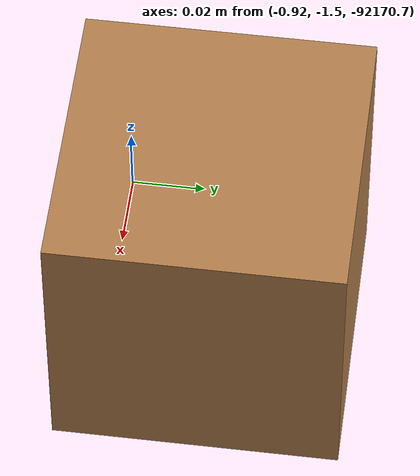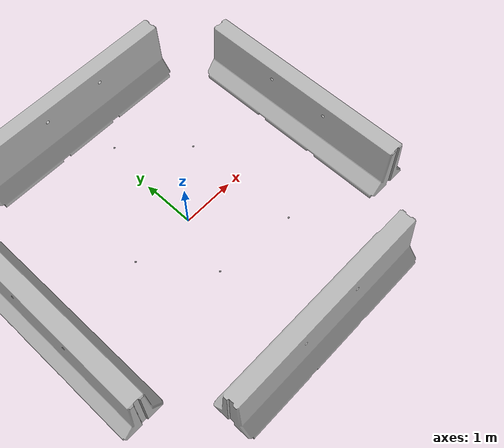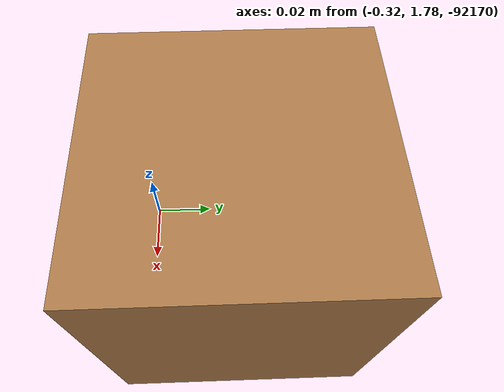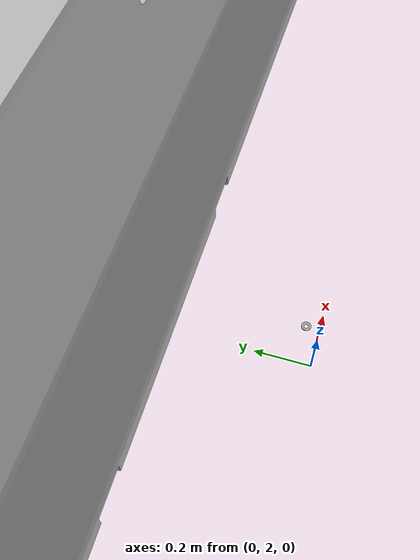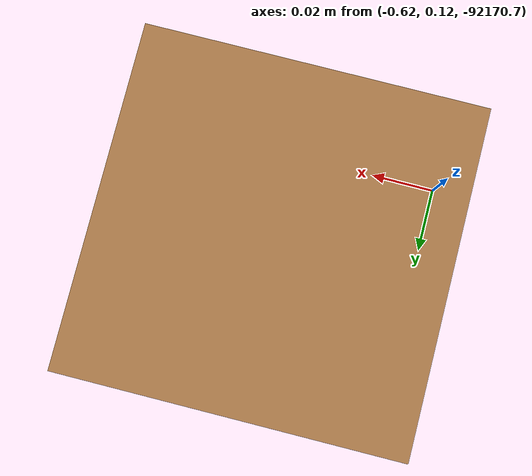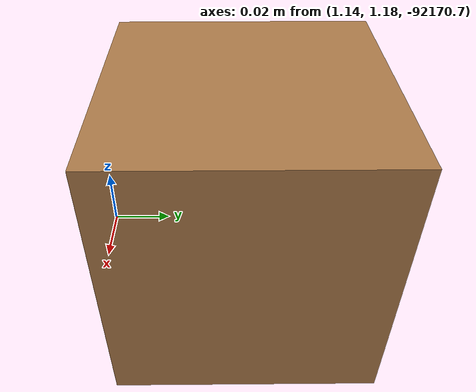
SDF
<sdf version="1.7">
 <world name="default">
  <light name="sun" type="directional">
   <pose>0 0 10 0 -0 0</pose>
   <diffuse>0.8 0.8 0.8 1</diffuse>
   <specular>0.2 0.2 0.2 1</specular>
   <attenuation>
    <range>1000</range>
    <constant>0.9</constant>
    <linear>0.01</linear>
    <quadratic>0.001</quadratic>
   </attenuation>
   <direction>-0.5 0.1 -0.9</direction>
   <spot><inner_angle>0</inner_angle><outer_angle>0</outer_angle><falloff>0</falloff></spot>
  </light>
  <model name="ground_plane">
   <static>1</static>
   <link name="link">
    <collision name="collision">
     <geometry><plane><normal>0 0 1</normal><size>100 100</size></plane></geometry>
     <surface>
      <contact><collide_bitmask>65535</collide_bitmask></contact>
      <friction><ode><mu>100</mu><mu2>50</mu2></ode></friction>
     </surface>
    </collision>
    <visual name="visual">
     <cast_shadows>0</cast_shadows>
     <geometry><plane><normal>0 0 1</normal><size>100 100</size></plane></geometry>
     <material>
      <script><uri>file://media/materials/scripts/gazebo.material</uri><name>Gazebo/Grey</name></script>
     </material>
    </visual>
   </link>
  </model>
  <gravity>0 0 -9.8</gravity>
  <magnetic_field>6e-06 2.3e-05 -4.2e-05</magnetic_field>
  <atmosphere type="adiabatic"/>
  <physics type="ode">
   <max_step_size>0.001</max_step_size>
   <real_time_factor>1</real_time_factor>
   <real_time_update_rate>1000</real_time_update_rate>
  </physics>
  <scene><ambient>0.4 0.4 0.4 1</ambient><background>0.7 0.7 0.7 1</background><shadows>1</shadows></scene>
  <spherical_coordinates>
   <surface_model>EARTH_WGS84</surface_model>
   <latitude_deg>0</latitude_deg>
   <longitude_deg>0</longitude_deg>
   <elevation>0</elevation>
   <heading_deg>0</heading_deg>
  </spherical_coordinates>
  <model name="jersey_barrier">
   <static>1</static>
   <link name="link">
    <visual name="visual">
     <geometry><mesh><uri>model://jersey_barrier/meshes/jersey_barrier.dae</uri></mesh></geometry>
    </visual>
    <collision name="upright">
     <pose>0 0 0.5715 0 -0 0</pose>
     <geometry><box><size>4.06542 0.3063 1.143</size></box></geometry>
    </collision>
    <collision name="base">
     <pose>0 0 0.032258 0 -0 0</pose>
     <geometry><box><size>4.06542 0.8107 0.064516</size></box></geometry>
    </collision>
    <collision name="base2">
     <pose>0 0 0.1 0 -0 0</pose>
     <geometry><box><size>4.06542 0.65 0.1</size></box></geometry>
    </collision>
    <collision name="base3">
     <pose>0 0 0.2 0 -0 0</pose>
     <geometry><box><size>4.06542 0.5 0.1</size></box></geometry>
    </collision>
    <collision name="left-angle">
     <pose>0 -0.224 0.2401 0.9 -0 0</pose>
     <geometry><box><size>4.06542 0.5 0.064516</size></box></geometry>
    </collision>
    <collision name="right-angle">
     <pose>0 0.224 0.2401 -0.9 0 0</pose>
     <geometry><box><size>4.06542 0.5 0.064516</size></box></geometry>
    </collision>
   </link>
   <pose>0.029912 -2.93762 0 0 -0 0</pose>
  </model>
  <model name="jersey_barrier_0">
   <static>1</static>
   <link name="link">
    <visual name="visual">
     <geometry><mesh><uri>model://jersey_barrier/meshes/jersey_barrier.dae</uri></mesh></geometry>
    </visual>
    <collision name="upright">
     <pose>0 0 0.5715 0 -0 0</pose>
     <geometry><box><size>4.06542 0.3063 1.143</size></box></geometry>
    </collision>
    <collision name="base">
     <pose>0 0 0.032258 0 -0 0</pose>
     <geometry><box><size>4.06542 0.8107 0.064516</size></box></geometry>
    </collision>
    <collision name="base2">
     <pose>0 0 0.1 0 -0 0</pose>
     <geometry><box><size>4.06542 0.65 0.1</size></box></geometry>
    </collision>
    <collision name="base3">
     <pose>0 0 0.2 0 -0 0</pose>
     <geometry><box><size>4.06542 0.5 0.1</size></box></geometry>
    </collision>
    <collision name="left-angle">
     <pose>0 -0.224 0.2401 0.9 -0 0</pose>
     <geometry><box><size>4.06542 0.5 0.064516</size></box></geometry>
    </collision>
    <collision name="right-angle">
     <pose>0 0.224 0.2401 -0.9 0 0</pose>
     <geometry><box><size>4.06542 0.5 0.064516</size></box></geometry>
    </collision>
   </link>
   <pose>-0.003474 2.89562 0 0 -0 0</pose>
  </model>
  <model name="jersey_barrier_1">
   <static>1</static>
   <link name="link">
    <visual name="visual">
     <geometry><mesh><uri>model://jersey_barrier/meshes/jersey_barrier.dae</uri></mesh></geometry>
    </visual>
    <collision name="upright">
     <pose>0 0 0.5715 0 -0 0</pose>
     <geometry><box><size>4.06542 0.3063 1.143</size></box></geometry>
    </collision>
    <collision name="base">
     <pose>0 0 0.032258 0 -0 0</pose>
     <geometry><box><size>4.06542 0.8107 0.064516</size></box></geometry>
    </collision>
    <collision name="base2">
     <pose>0 0 0.1 0 -0 0</pose>
     <geometry><box><size>4.06542 0.65 0.1</size></box></geometry>
    </collision>
    <collision name="base3">
     <pose>0 0 0.2 0 -0 0</pose>
     <geometry><box><size>4.06542 0.5 0.1</size></box></geometry>
    </collision>
    <collision name="left-angle">
     <pose>0 -0.224 0.2401 0.9 -0 0</pose>
     <geometry><box><size>4.06542 0.5 0.064516</size></box></geometry>
    </collision>
    <collision name="right-angle">
     <pose>0 0.224 0.2401 -0.9 0 0</pose>
     <geometry><box><size>4.06542 0.5 0.064516</size></box></geometry>
    </collision>
   </link>
   <pose>-2.87299 0.02907 0 0 0 -1.5718</pose>
  </model>
  <model name="jersey_barrier_2">
   <static>1</static>
   <link name="link">
    <visual name="visual">
     <geometry><mesh><uri>model://jersey_barrier/meshes/jersey_barrier.dae</uri></mesh></geometry>
    </visual>
    <collision name="upright">
     <pose>0 0 0.5715 0 -0 0</pose>
     <geometry><box><size>4.06542 0.3063 1.143</size></box></geometry>
    </collision>
    <collision name="base">
     <pose>0 0 0.032258 0 -0 0</pose>
     <geometry><box><size>4.06542 0.8107 0.064516</size></box></geometry>
    </collision>
    <collision name="base2">
     <pose>0 0 0.1 0 -0 0</pose>
     <geometry><box><size>4.06542 0.65 0.1</size></box></geometry>
    </collision>
    <collision name="base3">
     <pose>0 0 0.2 0 -0 0</pose>
     <geometry><box><size>4.06542 0.5 0.1</size></box></geometry>
    </collision>
    <collision name="left-angle">
     <pose>0 -0.224 0.2401 0.9 -0 0</pose>
     <geometry><box><size>4.06542 0.5 0.064516</size></box></geometry>
    </collision>
    <collision name="right-angle">
     <pose>0 0.224 0.2401 -0.9 0 0</pose>
     <geometry><box><size>4.06542 0.5 0.064516</size></box></geometry>
    </collision>
   </link>
   <pose>2.88573 -0.034531 0 0 0 -1.56779</pose>
  </model>
  <model name="wood_cube_7_5cm">
   <link name="link">
    <pose>0 0 0.0375 0 -0 0</pose>
    <inertial>
     <mass>0.2249</mass>
     <inertia>
      <ixx>0.000210844</ixx>
      <ixy>0</ixy>
      <ixz>0</ixz>
      <iyy>0.000210844</iyy>
      <iyz>0</iyz>
      <izz>0.000210844</izz>
     </inertia>
    </inertial>
    <visual name="visual">
     <geometry><box><size>0.075 0.075 0.075</size></box></geometry>
     <material>
      <script><uri>file://media/materials/scripts/gazebo.material</uri><name>Gazebo/Wood</name></script>
     </material>
    </visual>
   </link>
   <pose>1.17229 1.22737 -92170.7 0 -0 0</pose>
  </model>
  <model name="wood_cube_7_5cm_0">
   <link name="link">
    <pose>0 0 0.0375 0 -0 0</pose>
    <inertial>
     <mass>0.2249</mass>
     <inertia>
      <ixx>0.000210844</ixx>
      <ixy>0</ixy>
      <ixz>0</ixz>
      <iyy>0.000210844</iyy>
      <iyz>0</iyz>
      <izz>0.000210844</izz>
     </inertia>
    </inertial>
    <visual name="visual">
     <geometry><box><size>0.075 0.075 0.075</size></box></geometry>
     <material>
      <script><uri>file://media/materials/scripts/gazebo.material</uri><name>Gazebo/Wood</name></script>
     </material>
    </visual>
   </link>
   <pose>1.83825 -0.631208 -92170.7 0 -0 0</pose>
  </model>
  <model name="wood_cube_7_5cm_1">
   <link name="link">
    <pose>0 0 0.0375 0 -0 0</pose>
    <inertial>
     <mass>0.2249</mass>
     <inertia>
      <ixx>0.000210844</ixx>
      <ixy>0</ixy>
      <ixz>0</ixz>
      <iyy>0.000210844</iyy>
      <iyz>0</iyz>
      <izz>0.000210844</izz>
     </inertia>
    </inertial>
    <visual name="visual">
     <geometry><box><size>0.075 0.075 0.075</size></box></geometry>
     <material>
      <script><uri>file://media/materials/scripts/gazebo.material</uri><name>Gazebo/Wood</name></script>
     </material>
    </visual>
   </link>
   <pose>-0.576981 0.154983 -92170.7 0 -0 0</pose>
  </model>
  <model name="wood_cube_7_5cm_2">
   <link name="link">
    <pose>0 0 0.0375 0 -0 0</pose>
    <inertial>
     <mass>0.2249</mass>
     <inertia>
      <ixx>0.000210844</ixx>
      <ixy>0</ixy>
      <ixz>0</ixz>
      <iyy>0.000210844</iyy>
      <iyz>0</iyz>
      <izz>0.000210844</izz>
     </inertia>
    </inertial>
    <visual name="visual">
     <geometry><box><size>0.075 0.075 0.075</size></box></geometry>
     <material>
      <script><uri>file://media/materials/scripts/gazebo.material</uri><name>Gazebo/Wood</name></script>
     </material>
    </visual>
   </link>
   <pose>-0.876419 -1.47241 -92170.7 0 -0 0</pose>
  </model>
  <model name="wood_cube_7_5cm_3">
   <link name="link">
    <pose>0 0 0.0375 0 -0 0</pose>
    <inertial>
     <mass>0.2249</mass>
     <inertia>
      <ixx>0.000210844</ixx>
      <ixy>0</ixy>
      <ixz>0</ixz>
      <iyy>0.000210844</iyy>
      <iyz>0</iyz>
      <izz>0.000210844</izz>
     </inertia>
    </inertial>
    <visual name="visual">
     <geometry><box><size>0.075 0.075 0.075</size></box></geometry>
     <material>
      <script><uri>file://media/materials/scripts/gazebo.material</uri><name>Gazebo/Wood</name></script>
     </material>
    </visual>
   </link>
   <pose>-0.29107 1.80992 -92170 0 -0 0</pose>
  </model>
  <model name="washer">
   <link name="link">
    <pose>0 0 0.001 0 -0 0</pose>
    <inertial>
     <mass>0.0122</mass>
     <inertia>
      <ixx>1.08758e-06</ixx>
      <ixy>0</ixy>
      <ixz>0</ixz>
      <iyy>1.08758e-06</iyy>
      <iyz>0</iyz>
      <izz>2.16703e-06</izz>
     </inertia>
    </inertial>
    <collision name="collision">
     <geometry><mesh><uri>model://washer/meshes/washer.dae</uri></mesh></geometry>
     <surface>
      <contact>
       <poissons_ratio>0.305</poissons_ratio>
       <elastic_modulus>2e+11</elastic_modulus>
       <ode><kp>100000</kp><kd>100</kd><max_vel>100</max_vel><min_depth>0.001</min_depth></ode>
      </contact>
      <friction>
       <torsional>
        <coefficient>1</coefficient>
        <use_patch_radius>0</use_patch_radius>
        <surface_radius>0.01</surface_radius>
       </torsional>
      </friction>
     </surface>
    </collision>
    <visual name="visual">
     <geometry><mesh><uri>model://washer/meshes/washer.dae</uri></mesh></geometry>
     <material>
      <script><uri>file://media/materials/scripts/gazebo.material</uri><name>Gazebo/Grey</name></script>
     </material>
    </visual>
   </link>
   <pose>0.142901 2.04865 -0.000445 -0.012923 -0.004347 3.9e-05</pose>
  </model>
  <model name="washer_0">
   <link name="link">
    <pose>0 0 0.001 0 -0 0</pose>
    <inertial>
     <mass>0.0122</mass>
     <inertia>
      <ixx>1.08758e-06</ixx>
      <ixy>0</ixy>
      <ixz>0</ixz>
      <iyy>1.08758e-06</iyy>
      <iyz>0</iyz>
      <izz>2.16703e-06</izz>
     </inertia>
    </inertial>
    <collision name="collision">
     <geometry><mesh><uri>model://washer/meshes/washer.dae</uri></mesh></geometry>
     <surface>
      <contact>
       <poissons_ratio>0.305</poissons_ratio>
       <elastic_modulus>2e+11</elastic_modulus>
       <ode><kp>100000</kp><kd>100</kd><max_vel>100</max_vel><min_depth>0.001</min_depth></ode>
      </contact>
      <friction>
       <torsional>
        <coefficient>1</coefficient>
        <use_patch_radius>0</use_patch_radius>
        <surface_radius>0.01</surface_radius>
       </torsional>
      </friction>
     </surface>
    </collision>
    <visual name="visual">
     <geometry><mesh><uri>model://washer/meshes/washer.dae</uri></mesh></geometry>
     <material>
      <script><uri>file://media/materials/scripts/gazebo.material</uri><name>Gazebo/Grey</name></script>
     </material>
    </visual>
   </link>
   <pose>1.14688 1.02734 -0.000382 -0.01111 -0.003739 2.9e-05</pose>
  </model>
  <model name="washer_1">
   <link name="link">
    <pose>0 0 0.001 0 -0 0</pose>
    <inertial>
     <mass>0.0122</mass>
     <inertia>
      <ixx>1.08758e-06</ixx>
      <ixy>0</ixy>
      <ixz>0</ixz>
      <iyy>1.08758e-06</iyy>
      <iyz>0</iyz>
      <izz>2.16703e-06</izz>
     </inertia>
    </inertial>
    <collision name="collision">
     <geometry><mesh><uri>model://washer/meshes/washer.dae</uri></mesh></geometry>
     <surface>
      <contact>
       <poissons_ratio>0.305</poissons_ratio>
       <elastic_modulus>2e+11</elastic_modulus>
       <ode><kp>100000</kp><kd>100</kd><max_vel>100</max_vel><min_depth>0.001</min_depth></ode>
      </contact>
      <friction>
       <torsional>
        <coefficient>1</coefficient>
        <use_patch_radius>0</use_patch_radius>
        <surface_radius>0.01</surface_radius>
       </torsional>
      </friction>
     </surface>
    </collision>
    <visual name="visual">
     <geometry><mesh><uri>model://washer/meshes/washer.dae</uri></mesh></geometry>
     <material>
      <script><uri>file://media/materials/scripts/gazebo.material</uri><name>Gazebo/Grey</name></script>
     </material>
    </visual>
   </link>
   <pose>-1.15354 0.088626 -0.00032 -0.009298 -0.003129 2.1e-05</pose>
  </model>
  <model name="washer_2">
   <link name="link">
    <pose>0 0 0.001 0 -0 0</pose>
    <inertial>
     <mass>0.0122</mass>
     <inertia>
      <ixx>1.08758e-06</ixx>
      <ixy>0</ixy>
      <ixz>0</ixz>
      <iyy>1.08758e-06</iyy>
      <iyz>0</iyz>
      <izz>2.16703e-06</izz>
     </inertia>
    </inertial>
    <collision name="collision">
     <geometry><mesh><uri>model://washer/meshes/washer.dae</uri></mesh></geometry>
     <surface>
      <contact>
       <poissons_ratio>0.305</poissons_ratio>
       <elastic_modulus>2e+11</elastic_modulus>
       <ode><kp>100000</kp><kd>100</kd><max_vel>100</max_vel><min_depth>0.001</min_depth></ode>
      </contact>
      <friction>
       <torsional>
        <coefficient>1</coefficient>
        <use_patch_radius>0</use_patch_radius>
        <surface_radius>0.01</surface_radius>
       </torsional>
      </friction>
     </surface>
    </collision>
    <visual name="visual">
     <geometry><mesh><uri>model://washer/meshes/washer.dae</uri></mesh></geometry>
     <material>
      <script><uri>file://media/materials/scripts/gazebo.material</uri><name>Gazebo/Grey</name></script>
     </material>
    </visual>
   </link>
   <pose>-0.31092 -1.06645 -0.000258 -0.007487 -0.002517 1.3e-05</pose>
  </model>
  <model name="washer_3">
   <link name="link">
    <pose>0 0 0.001 0 -0 0</pose>
    <inertial>
     <mass>0.0122</mass>
     <inertia>
      <ixx>1.08758e-06</ixx>
      <ixy>0</ixy>
      <ixz>0</ixz>
      <iyy>1.08758e-06</iyy>
      <iyz>0</iyz>
      <izz>2.16703e-06</izz>
     </inertia>
    </inertial>
    <collision name="collision">
     <geometry><mesh><uri>model://washer/meshes/washer.dae</uri></mesh></geometry>
     <surface>
      <contact>
       <poissons_ratio>0.305</poissons_ratio>
       <elastic_modulus>2e+11</elastic_modulus>
       <ode><kp>100000</kp><kd>100</kd><max_vel>100</max_vel><min_depth>0.001</min_depth></ode>
      </contact>
      <friction>
       <torsional>
        <coefficient>1</coefficient>
        <use_patch_radius>0</use_patch_radius>
        <surface_radius>0.01</surface_radius>
       </torsional>
      </friction>
     </surface>
    </collision>
    <visual name="visual">
     <geometry><mesh><uri>model://washer/meshes/washer.dae</uri></mesh></geometry>
     <material>
      <script><uri>file://media/materials/scripts/gazebo.material</uri><name>Gazebo/Grey</name></script>
     </material>
    </visual>
   </link>
   <pose>1.22763 -1.223 -0.000205 -0.005679 -0.001912 8e-06</pose>
  </model>
 </world>
</sdf>
